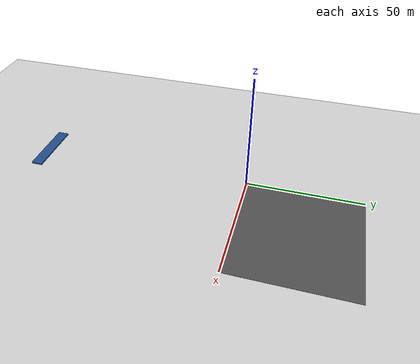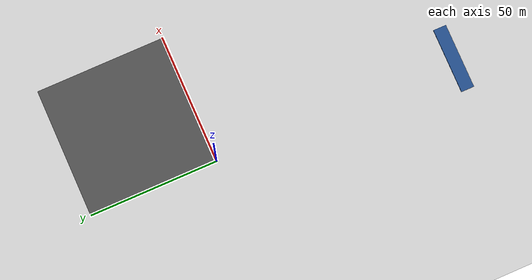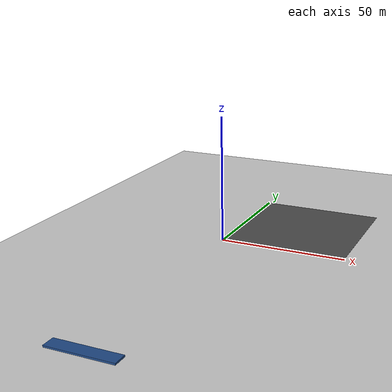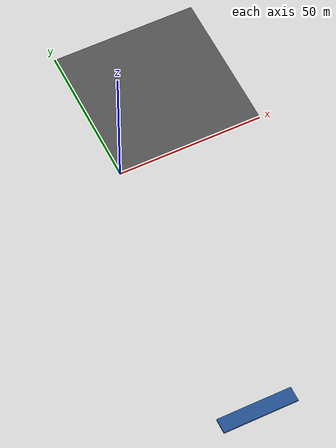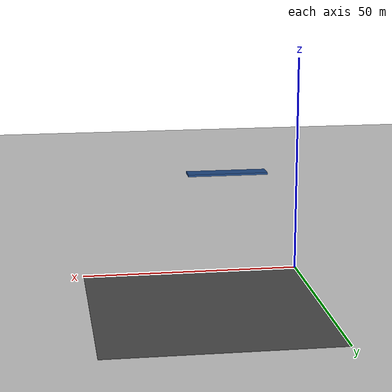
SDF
<sdf version="1.7">
 <world name="default">
  <model name="ground_plane">
   <static>1</static>
   <link name="link">
    <collision name="collision">
     <geometry><plane><normal>0 0 1</normal><size>100 100</size></plane></geometry>
     <surface>
      <contact><collide_bitmask>65535</collide_bitmask></contact>
      <friction><ode><mu>100</mu><mu2>50</mu2></ode></friction>
     </surface>
    </collision>
    <visual name="visual">
     <cast_shadows>0</cast_shadows>
     <geometry><plane><normal>0 0 1</normal><size>100 100</size></plane></geometry>
     <material>
      <script><uri>file://media/materials/scripts/gazebo.material</uri><name>Gazebo/Grey</name></script>
     </material>
    </visual>
   </link>
  </model>
  <model name="asphalt_plane">
   <link name="link">
    <inertial>
     <mass>1</mass>
     <inertia><ixx>1</ixx><ixy>0</ixy><ixz>0</ixz><iyy>1</iyy><iyz>0</iyz><izz>1</izz></inertia>
    </inertial>
    <visual name="visual">
     <cast_shadows>0</cast_shadows>
     <geometry><box><size>50 50 0.1</size></box></geometry>
     <material>
      <script>
       <uri>model://asphalt_plane/materials/scripts</uri>
       <uri>model://asphalt_plane/materials/textures</uri>
       <name>vrc/asphalt</name>
      </script>
      <shader type="pixel"><normal_map>__default__</normal_map></shader>
      <ambient>0.5 0.5 0.5 1</ambient>
      <diffuse>0.5 0.5 0.5 1</diffuse>
      <specular>0.2 0.2 0.2 1</specular>
      <emissive>0 0 0 1</emissive>
     </material>
    </visual>
    <collision name="collision">
     <geometry><box><size>50 50 0.1</size></box></geometry>
     <surface>
      <friction>
       <ode><mu>1</mu><mu2>1</mu2><fdir1>0 0 0</fdir1><slip1>0</slip1><slip2>0</slip2></ode>
       <torsional>
        <coefficient>1</coefficient>
        <patch_radius>0</patch_radius>
        <surface_radius>0</surface_radius>
        <use_patch_radius>1</use_patch_radius>
        <ode><slip>0</slip></ode>
       </torsional>
      </friction>
      <bounce><restitution_coefficient>0</restitution_coefficient><threshold>1e+06</threshold></bounce>
      <contact>
       <collide_without_contact>0</collide_without_contact>
       <collide_without_contact_bitmask>1</collide_without_contact_bitmask>
       <collide_bitmask>1</collide_bitmask>
       <ode>
        <soft_cfm>0</soft_cfm>
        <soft_erp>0.2</soft_erp>
        <kp>1e+13</kp>
        <kd>1</kd>
        <max_vel>0.01</max_vel>
        <min_depth>0</min_depth>
       </ode>
       <bullet>
        <split_impulse>1</split_impulse>
        <split_impulse_penetration_threshold>-0.01</split_impulse_penetration_threshold>
        <soft_cfm>0</soft_cfm>
        <soft_erp>0.2</soft_erp>
        <kp>1e+13</kp>
        <kd>1</kd>
       </bullet>
      </contact>
     </surface>
    </collision>
   </link>
   <static>1</static>
   <pose>25 25 0 0 -0 0</pose>
  </model>
  <model name="blue_box_25x5">
   <link name="link">
    <inertial>
     <mass>1</mass>
     <inertia>
      <ixx>0.166667</ixx>
      <ixy>0</ixy>
      <ixz>0</ixz>
      <iyy>0.166667</iyy>
      <iyz>0</iyz>
      <izz>0.166667</izz>
     </inertia>
    </inertial>
    <visual name="visual">
     <geometry><box><size>25 5 1</size></box></geometry>
     <material>
      <script><name>Gazebo/Grey</name><uri>file://media/materials/scripts/gazebo.material</uri></script>
      <shader type="pixel"><normal_map>__default__</normal_map></shader>
      <ambient>0.125 0.29 0.529 1</ambient>
      <diffuse>0.7 0.7 0.7 1</diffuse>
      <specular>0.01 0.01 0.01 1</specular>
      <emissive>0 0 0 1</emissive>
     </material>
    </visual>
    <collision name="collision">
     <geometry><box><size>25 5 1</size></box></geometry>
     <surface>
      <friction>
       <ode><mu>1</mu><mu2>1</mu2><fdir1>0 0 0</fdir1><slip1>0</slip1><slip2>0</slip2></ode>
       <torsional>
        <coefficient>1</coefficient>
        <patch_radius>0</patch_radius>
        <surface_radius>0</surface_radius>
        <use_patch_radius>1</use_patch_radius>
        <ode><slip>0</slip></ode>
       </torsional>
      </friction>
      <bounce><restitution_coefficient>0</restitution_coefficient><threshold>1e+06</threshold></bounce>
      <contact>
       <collide_without_contact>0</collide_without_contact>
       <collide_without_contact_bitmask>1</collide_without_contact_bitmask>
       <collide_bitmask>1</collide_bitmask>
       <ode>
        <soft_cfm>0</soft_cfm>
        <soft_erp>0.2</soft_erp>
        <kp>1e+13</kp>
        <kd>1</kd>
        <max_vel>0.01</max_vel>
        <min_depth>0</min_depth>
       </ode>
       <bullet>
        <split_impulse>1</split_impulse>
        <split_impulse_penetration_threshold>-0.01</split_impulse_penetration_threshold>
        <soft_cfm>0</soft_cfm>
        <soft_erp>0.2</soft_erp>
        <kp>1e+13</kp>
        <kd>1</kd>
       </bullet>
      </contact>
     </surface>
    </collision>
   </link>
   <static>1</static>
   <pose>0 -95 0 0 -0 0</pose>
  </model>
 </world>
</sdf>
